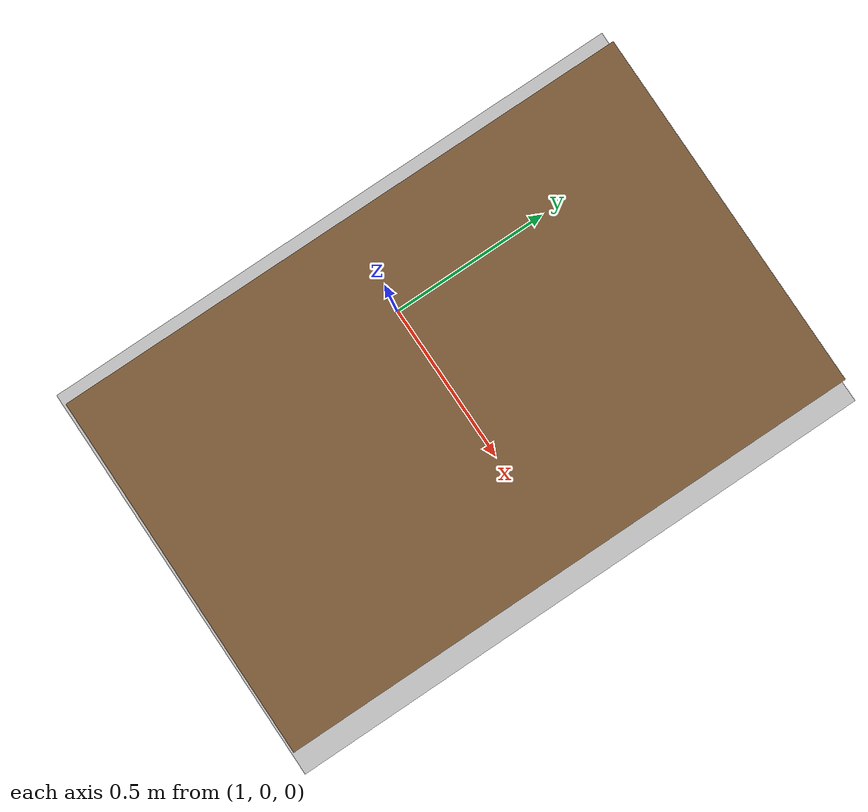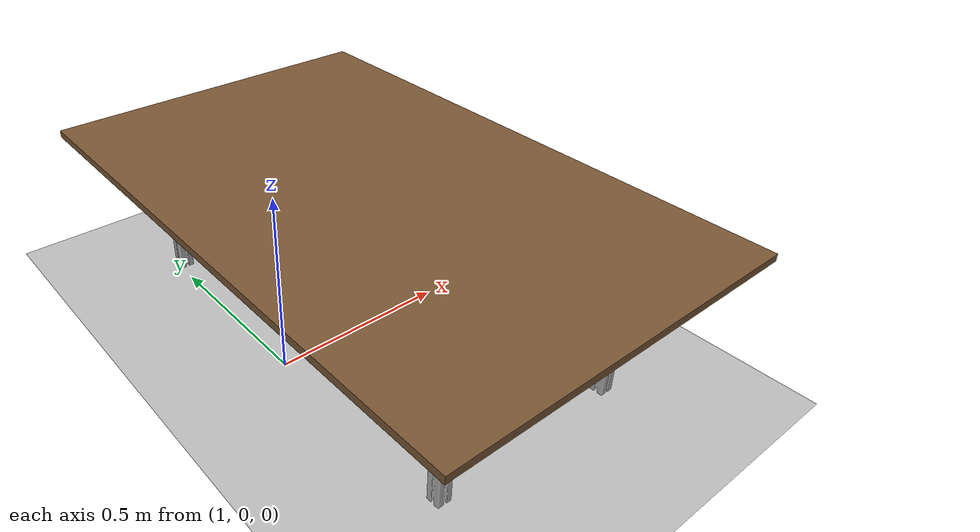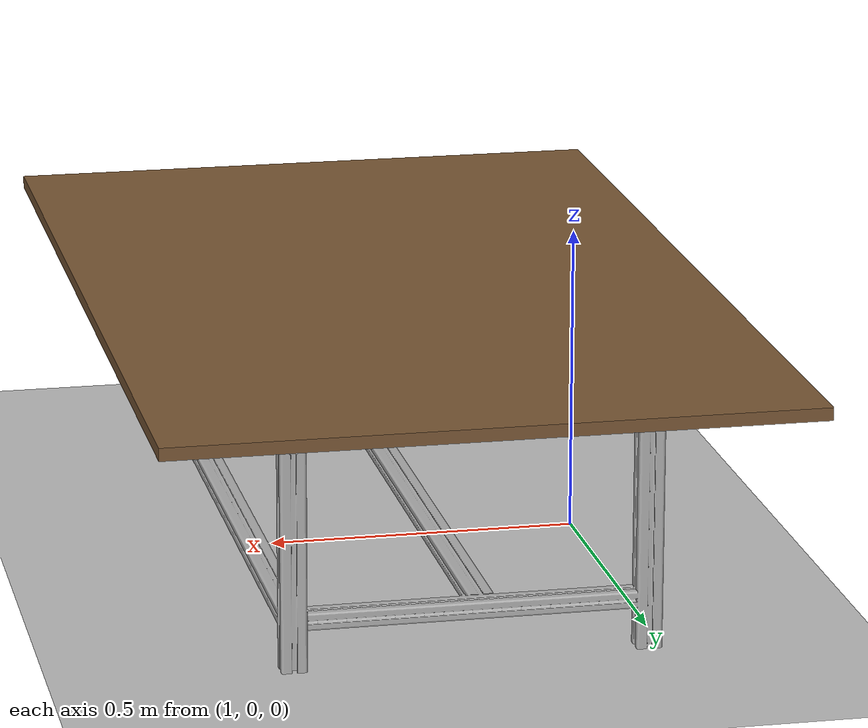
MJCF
<mujoco model="empty_floor">
  <compiler angle="radian"/>

  <option timestep="0.001" gravity="0 0 -9.81" integrator="implicitfast" impratio="10">
      <flag contact="enable" energy="enable" gravity="enable"/>
  </option>

  <visual>
    <rgba haze="0.15 0.25 0.35 1"/>
    <global azimuth="120" elevation="-20"/>
  </visual>

  <asset>
    <mesh name="table" file="../objects/table/table.STL" scale="1.0 1.0 0.66"/>

    <texture type="skybox" builtin="gradient" rgb1="0.68 0.68 0.68" rgb2="0.3 0.3 0.3" width="512" height="3072"/>
    <texture name="groundplane" type="2d" builtin="checker" mark="edge"  rgb1="0.68 0.68 0.68" rgb2="0.8 0.8 0.8"
      markrgb="0.68 0.68 0.68" width="300" height="300"/>
    <material name="groundplane" reflectance="0.2" shininess="0.0" specular="0.0" texrepeat="5 5" texture="groundplane" texuniform="true"/>

    <texture name="wood" type="2d" file="wood.png"/>
    <material name="wood" texture="wood" texrepeat="1 1" texuniform="true" rgba="0.68 0.68 0.68 1"/>
  </asset>

  <worldbody>
    <!-- Floor -->
    <geom condim="3" material="groundplane" name="floor" pos="0 0 0" size="3 3 .125" type="plane"/>
    <light diffuse=".8 .8 .8" dir="0 -.15 -1" directional="false" pos="1 1 8.0" specular="0.3 0.3 0.3" castshadow="false"/>
    <light diffuse=".8 .8 .8" dir="0 -.15 -1" directional="false" pos="-3. -3. 8.0" specular="0.3 0.3 0.3" castshadow="false"/>
    <!-- front view -->
    <camera mode="fixed" name="frontview" pos="1.6 0 1.45" quat="0.56 0.43 0.43 0.56"/>
    <!-- bird view -->
    <camera mode="fixed" name="birdview" pos="-0.2 0 3.0" quat="0.7071 0 0 0.7071"/>
    <!-- agent view -->
    <camera mode="fixed" name="agentview" pos="0.5 0 1.35" quat="0.653 0.271 0.271 0.653"/>
    <!-- side view -->
    <camera mode="fixed" name="sideview" pos="-0.05651774593317116 1.2761224129427358 1.4879572214102434" quat="0.009905065491771751 0.006877963156909582 0.5912228352893879 0.806418094001364" />

    <body name="table" pos="1 0.6 0" euler="0 0 1.57">
        <include file="objects/table/table.xml"/>
    </body>

  </worldbody>
</mujoco>

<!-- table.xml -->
<mujoco model="empty_floor">

    <body name="table_0">
        <geom pos="-0.6 -0.3 0.422" contype="0" conaffinity="0" group="1" euler = "0 0 1.57" type="box" size="0.5 0.8 0.01" material="wood"/>
        <geom pos="-0.6 -0.3 0.422" conaffinity="1" condim="3" contype="0" group="4" euler = "0 0 1.57" type="box" size="0.5 0.8 0.01" />
        <geom type="mesh" contype="0" conaffinity="0" group="1" rgba="0.68 0.68 0.68 1" mesh="table" friction="0.95 0.9 0.9"/>
        <geom type="mesh" conaffinity="1" condim="3" contype="0" group="4" rgba="0.68 0.68 0.68 1" mesh="table" friction="0.95 0.9 0.9"/>
    </body>

</mujoco>
